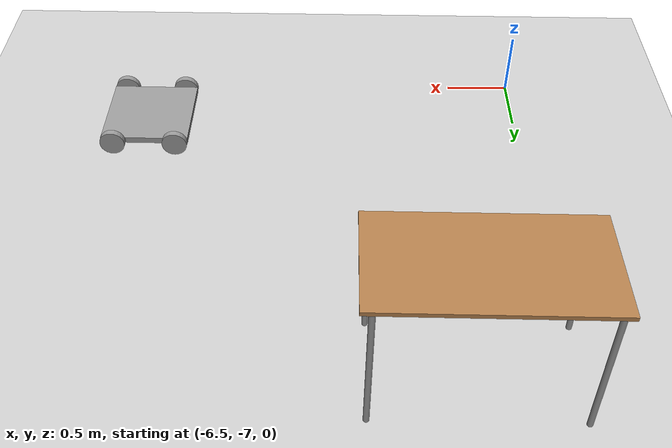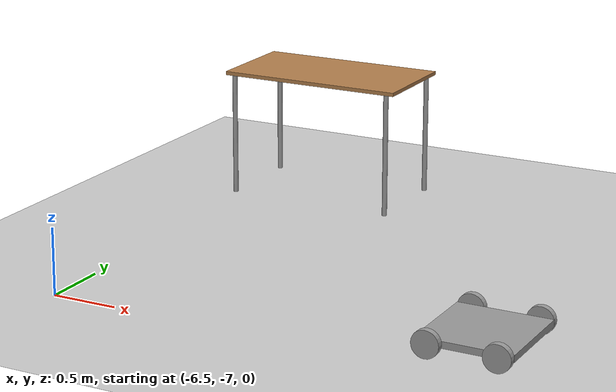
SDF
<sdf version="1.6">
 <world name="default">
  <model name="ground_plane">
   <static>1</static>
   <link name="link">
    <collision name="collision">
     <geometry><plane><normal>0 0 1</normal><size>100 100</size></plane></geometry>
     <surface>
      <contact><collide_bitmask>65535</collide_bitmask></contact>
      <friction><ode><mu>100</mu><mu2>50</mu2></ode></friction>
     </surface>
    </collision>
    <visual name="visual">
     <cast_shadows>0</cast_shadows>
     <geometry><plane><normal>0 0 1</normal><size>100 100</size></plane></geometry>
     <material>
      <script><uri>file://media/materials/scripts/gazebo.material</uri><name>Gazebo/Grey</name></script>
     </material>
    </visual>
   </link>
  </model>
  <model name="Robot_clone_0">
   <link name="link_2">
    <inertial>
     <mass>1</mass>
     <inertia>
      <ixx>0.166667</ixx>
      <ixy>0</ixy>
      <ixz>0</ixz>
      <iyy>0.166667</iyy>
      <iyz>0</iyz>
      <izz>0.166667</izz>
     </inertia>
    </inertial>
    <pose>0 0.5 0.3 0 -0 0</pose>
    <visual name="visual">
     <geometry><box><size>0.7 0.7 0.05</size></box></geometry>
     <material>
      <lighting>1</lighting>
      <script><uri>file://media/materials/scripts/gazebo.material</uri><name>Gazebo/Grey</name></script>
      <shader type="vertex"><normal_map>__default__</normal_map></shader>
      <ambient>0.3 0.3 0.3 1</ambient>
      <diffuse>0.7 0.7 0.7 1</diffuse>
      <specular>0.01 0.01 0.01 1</specular>
      <emissive>0 0 0 1</emissive>
     </material>
    </visual>
    <collision name="collision">
     <geometry><box><size>0.7 0.7 0.05</size></box></geometry>
     <surface>
      <friction>
       <ode><mu>1</mu><mu2>1</mu2><fdir1>0 0 0</fdir1><slip1>0</slip1><slip2>0</slip2></ode>
       <torsional>
        <coefficient>1</coefficient>
        <patch_radius>0</patch_radius>
        <surface_radius>0</surface_radius>
        <use_patch_radius>1</use_patch_radius>
        <ode><slip>0</slip></ode>
       </torsional>
      </friction>
      <bounce><restitution_coefficient>0</restitution_coefficient><threshold>1e+06</threshold></bounce>
      <contact>
       <collide_without_contact>0</collide_without_contact>
       <collide_without_contact_bitmask>1</collide_without_contact_bitmask>
       <collide_bitmask>1</collide_bitmask>
       <ode>
        <soft_cfm>0</soft_cfm>
        <soft_erp>0.2</soft_erp>
        <kp>1e+13</kp>
        <kd>1</kd>
        <max_vel>0.01</max_vel>
        <min_depth>0</min_depth>
       </ode>
       <bullet>
        <split_impulse>1</split_impulse>
        <split_impulse_penetration_threshold>-0.01</split_impulse_penetration_threshold>
        <soft_cfm>0</soft_cfm>
        <soft_erp>0.2</soft_erp>
        <kp>1e+13</kp>
        <kd>1</kd>
       </bullet>
      </contact>
     </surface>
    </collision>
   </link>
   <link name="link_0">
    <inertial>
     <mass>1</mass>
     <inertia><ixx>0.145833</ixx><ixy>0</ixy><ixz>0</ixz><iyy>0.145833</iyy><iyz>0</iyz><izz>0.125</izz></inertia>
    </inertial>
    <pose>-0.250189 0.875048 0.300006 8e-06 -0 0.000261</pose>
    <visual name="visual">
     <pose>0 0 0 1.571 -0 0</pose>
     <geometry><cylinder><radius>0.1</radius><length>0.05</length></cylinder></geometry>
     <material>
      <lighting>1</lighting>
      <script><uri>file://media/materials/scripts/gazebo.material</uri><name>Gazebo/Grey</name></script>
      <shader type="vertex"><normal_map>__default__</normal_map></shader>
      <ambient>0.3 0.3 0.3 1</ambient>
      <diffuse>0.7 0.7 0.7 1</diffuse>
      <specular>0.01 0.01 0.01 1</specular>
      <emissive>0 0 0 1</emissive>
     </material>
    </visual>
    <collision name="collision">
     <pose>0 0 0 1.571 -0 0</pose>
     <geometry><cylinder><radius>0.1</radius><length>0.05</length></cylinder></geometry>
     <surface>
      <friction>
       <ode><mu>1</mu><mu2>1</mu2><fdir1>0 0 0</fdir1><slip1>0</slip1><slip2>0</slip2></ode>
       <torsional>
        <coefficient>1</coefficient>
        <patch_radius>0</patch_radius>
        <surface_radius>0</surface_radius>
        <use_patch_radius>1</use_patch_radius>
        <ode><slip>0</slip></ode>
       </torsional>
      </friction>
      <bounce><restitution_coefficient>0</restitution_coefficient><threshold>1e+06</threshold></bounce>
      <contact>
       <collide_without_contact>0</collide_without_contact>
       <collide_without_contact_bitmask>1</collide_without_contact_bitmask>
       <collide_bitmask>1</collide_bitmask>
       <ode>
        <soft_cfm>0</soft_cfm>
        <soft_erp>0.2</soft_erp>
        <kp>1e+13</kp>
        <kd>1</kd>
        <max_vel>0.01</max_vel>
        <min_depth>0</min_depth>
       </ode>
       <bullet>
        <split_impulse>1</split_impulse>
        <split_impulse_penetration_threshold>-0.01</split_impulse_penetration_threshold>
        <soft_cfm>0</soft_cfm>
        <soft_erp>0.2</soft_erp>
        <kp>1e+13</kp>
        <kd>1</kd>
       </bullet>
      </contact>
     </surface>
    </collision>
   </link>
   <link name="link_0_clone">
    <inertial>
     <mass>1</mass>
     <inertia><ixx>0.145833</ixx><ixy>0</ixy><ixz>0</ixz><iyy>0.145833</iyy><iyz>0</iyz><izz>0.125</izz></inertia>
    </inertial>
    <pose>-0.249987 0.124796 0.3 1.6e-05 -0 0.000522</pose>
    <visual name="visual">
     <pose>0 0 0 1.571 -0 0</pose>
     <geometry><cylinder><radius>0.1</radius><length>0.05</length></cylinder></geometry>
     <material>
      <lighting>1</lighting>
      <script><uri>file://media/materials/scripts/gazebo.material</uri><name>Gazebo/Grey</name></script>
      <shader type="vertex"><normal_map>__default__</normal_map></shader>
      <ambient>0.3 0.3 0.3 1</ambient>
      <diffuse>0.7 0.7 0.7 1</diffuse>
      <specular>0.01 0.01 0.01 1</specular>
      <emissive>0 0 0 1</emissive>
     </material>
    </visual>
    <collision name="collision">
     <pose>0 0 0 1.571 -0 0</pose>
     <geometry><cylinder><radius>0.1</radius><length>0.05</length></cylinder></geometry>
     <surface>
      <friction>
       <ode><mu>1</mu><mu2>1</mu2><fdir1>0 0 0</fdir1><slip1>0</slip1><slip2>0</slip2></ode>
       <torsional>
        <coefficient>1</coefficient>
        <patch_radius>0</patch_radius>
        <surface_radius>0</surface_radius>
        <use_patch_radius>1</use_patch_radius>
        <ode><slip>0</slip></ode>
       </torsional>
      </friction>
      <bounce><restitution_coefficient>0</restitution_coefficient><threshold>1e+06</threshold></bounce>
      <contact>
       <collide_without_contact>0</collide_without_contact>
       <collide_without_contact_bitmask>1</collide_without_contact_bitmask>
       <collide_bitmask>1</collide_bitmask>
       <ode>
        <soft_cfm>0</soft_cfm>
        <soft_erp>0.2</soft_erp>
        <kp>1e+13</kp>
        <kd>1</kd>
        <max_vel>0.01</max_vel>
        <min_depth>0</min_depth>
       </ode>
       <bullet>
        <split_impulse>1</split_impulse>
        <split_impulse_penetration_threshold>-0.01</split_impulse_penetration_threshold>
        <soft_cfm>0</soft_cfm>
        <soft_erp>0.2</soft_erp>
        <kp>1e+13</kp>
        <kd>1</kd>
       </bullet>
      </contact>
     </surface>
    </collision>
   </link>
   <link name="link_0_clone_0">
    <inertial>
     <mass>1</mass>
     <inertia><ixx>0.145833</ixx><ixy>0</ixy><ixz>0</ixz><iyy>0.145833</iyy><iyz>0</iyz><izz>0.125</izz></inertia>
    </inertial>
    <pose>0.249987 0.875204 0.3 1.6e-05 -0 0.000522</pose>
    <visual name="visual">
     <pose>0 0 0 1.571 -0 0</pose>
     <geometry><cylinder><radius>0.1</radius><length>0.05</length></cylinder></geometry>
     <material>
      <lighting>1</lighting>
      <script><uri>file://media/materials/scripts/gazebo.material</uri><name>Gazebo/Grey</name></script>
      <shader type="vertex"><normal_map>__default__</normal_map></shader>
      <ambient>0.3 0.3 0.3 1</ambient>
      <diffuse>0.7 0.7 0.7 1</diffuse>
      <specular>0.01 0.01 0.01 1</specular>
      <emissive>0 0 0 1</emissive>
     </material>
    </visual>
    <collision name="collision">
     <pose>0 0 0 1.571 -0 0</pose>
     <geometry><cylinder><radius>0.1</radius><length>0.05</length></cylinder></geometry>
     <surface>
      <friction>
       <ode><mu>1</mu><mu2>1</mu2><fdir1>0 0 0</fdir1><slip1>0</slip1><slip2>0</slip2></ode>
       <torsional>
        <coefficient>1</coefficient>
        <patch_radius>0</patch_radius>
        <surface_radius>0</surface_radius>
        <use_patch_radius>1</use_patch_radius>
        <ode><slip>0</slip></ode>
       </torsional>
      </friction>
      <bounce><restitution_coefficient>0</restitution_coefficient><threshold>1e+06</threshold></bounce>
      <contact>
       <collide_without_contact>0</collide_without_contact>
       <collide_without_contact_bitmask>1</collide_without_contact_bitmask>
       <collide_bitmask>1</collide_bitmask>
       <ode>
        <soft_cfm>0</soft_cfm>
        <soft_erp>0.2</soft_erp>
        <kp>1e+13</kp>
        <kd>1</kd>
        <max_vel>0.01</max_vel>
        <min_depth>0</min_depth>
       </ode>
       <bullet>
        <split_impulse>1</split_impulse>
        <split_impulse_penetration_threshold>-0.01</split_impulse_penetration_threshold>
        <soft_cfm>0</soft_cfm>
        <soft_erp>0.2</soft_erp>
        <kp>1e+13</kp>
        <kd>1</kd>
       </bullet>
      </contact>
     </surface>
    </collision>
   </link>
   <link name="link_0_clone_0_clone">
    <inertial>
     <mass>1</mass>
     <inertia><ixx>0.145833</ixx><ixy>0</ixy><ixz>0</ixz><iyy>0.145833</iyy><iyz>0</iyz><izz>0.125</izz></inertia>
    </inertial>
    <pose>0.250176 0.124899 0.3 2.4e-05 -0 0.000783</pose>
    <visual name="visual">
     <pose>0 0 0 1.571 -0 0</pose>
     <geometry><cylinder><radius>0.1</radius><length>0.05</length></cylinder></geometry>
     <material>
      <lighting>1</lighting>
      <script><uri>file://media/materials/scripts/gazebo.material</uri><name>Gazebo/Grey</name></script>
      <shader type="vertex"><normal_map>__default__</normal_map></shader>
      <ambient>0.3 0.3 0.3 1</ambient>
      <diffuse>0.7 0.7 0.7 1</diffuse>
      <specular>0.01 0.01 0.01 1</specular>
      <emissive>0 0 0 1</emissive>
     </material>
    </visual>
    <collision name="collision">
     <pose>0 0 0 1.571 -0 0</pose>
     <geometry><cylinder><radius>0.1</radius><length>0.05</length></cylinder></geometry>
     <surface>
      <friction>
       <ode><mu>1</mu><mu2>1</mu2><fdir1>0 0 0</fdir1><slip1>0</slip1><slip2>0</slip2></ode>
       <torsional>
        <coefficient>1</coefficient>
        <patch_radius>0</patch_radius>
        <surface_radius>0</surface_radius>
        <use_patch_radius>1</use_patch_radius>
        <ode><slip>0</slip></ode>
       </torsional>
      </friction>
      <bounce><restitution_coefficient>0</restitution_coefficient><threshold>1e+06</threshold></bounce>
      <contact>
       <collide_without_contact>0</collide_without_contact>
       <collide_without_contact_bitmask>1</collide_without_contact_bitmask>
       <collide_bitmask>1</collide_bitmask>
       <ode>
        <soft_cfm>0</soft_cfm>
        <soft_erp>0.2</soft_erp>
        <kp>1e+13</kp>
        <kd>1</kd>
        <max_vel>0.01</max_vel>
        <min_depth>0</min_depth>
       </ode>
       <bullet>
        <split_impulse>1</split_impulse>
        <split_impulse_penetration_threshold>-0.01</split_impulse_penetration_threshold>
        <soft_cfm>0</soft_cfm>
        <soft_erp>0.2</soft_erp>
        <kp>1e+13</kp>
        <kd>1</kd>
       </bullet>
      </contact>
     </surface>
    </collision>
   </link>
   <joint name="link_2_JOINT_10" type="revolute">
    <parent>link_2</parent>
    <child>link_0_clone</child>
    <axis>
     <xyz>0 0 1</xyz>
     <use_parent_model_frame>0</use_parent_model_frame>
     <limit>
      <lower>-1.79769e+308</lower>
      <upper>1.79769e+308</upper>
      <effort>-1</effort>
      <velocity>-1</velocity>
     </limit>
     <dynamics>
      <spring_reference>0</spring_reference>
      <spring_stiffness>0</spring_stiffness>
      <damping>0</damping>
     </dynamics>
    </axis>
    <physics>
     <ode><limit><cfm>0</cfm><erp>0.2</erp></limit><suspension><cfm>0</cfm><erp>0.2</erp></suspension></ode>
    </physics>
   </joint>
   <joint name="link_2_JOINT_1" type="revolute">
    <parent>link_2</parent>
    <child>link_0</child>
    <axis>
     <xyz>0 0 1</xyz>
     <use_parent_model_frame>0</use_parent_model_frame>
     <limit>
      <lower>-1.79769e+308</lower>
      <upper>1.79769e+308</upper>
      <effort>-1</effort>
      <velocity>-1</velocity>
     </limit>
     <dynamics>
      <spring_reference>0</spring_reference>
      <spring_stiffness>0</spring_stiffness>
      <damping>0</damping>
      <friction>0</friction>
     </dynamics>
    </axis>
    <physics>
     <ode><limit><cfm>0</cfm><erp>0.2</erp></limit><suspension><cfm>0</cfm><erp>0.2</erp></suspension></ode>
    </physics>
   </joint>
   <joint name="link_2_JOINT_8" type="revolute">
    <parent>link_2</parent>
    <child>link_0_clone_0</child>
    <axis>
     <xyz>0 0 1</xyz>
     <use_parent_model_frame>0</use_parent_model_frame>
     <limit>
      <lower>-1.79769e+308</lower>
      <upper>1.79769e+308</upper>
      <effort>-1</effort>
      <velocity>-1</velocity>
     </limit>
     <dynamics>
      <spring_reference>0</spring_reference>
      <spring_stiffness>0</spring_stiffness>
      <damping>0</damping>
     </dynamics>
    </axis>
    <physics>
     <ode><limit><cfm>0</cfm><erp>0.2</erp></limit><suspension><cfm>0</cfm><erp>0.2</erp></suspension></ode>
    </physics>
   </joint>
   <joint name="link_2_JOINT_9" type="revolute">
    <parent>link_2</parent>
    <child>link_0_clone_0_clone</child>
    <axis>
     <xyz>0 0 1</xyz>
     <use_parent_model_frame>0</use_parent_model_frame>
     <limit>
      <lower>-1.79769e+308</lower>
      <upper>1.79769e+308</upper>
      <effort>-1</effort>
      <velocity>-1</velocity>
     </limit>
     <dynamics>
      <spring_reference>0</spring_reference>
      <spring_stiffness>0</spring_stiffness>
      <damping>0</damping>
     </dynamics>
    </axis>
    <physics>
     <ode><limit><cfm>0</cfm><erp>0.2</erp></limit><suspension><cfm>0</cfm><erp>0.2</erp></suspension></ode>
    </physics>
   </joint>
   <static>0</static>
   <pose>-3.4822 -6.92686 -0.199993 -4e-06 -7e-06 -0.003515</pose>
  </model>
  <model name="table">
   <static>1</static>
   <link name="link">
    <collision name="surface">
     <pose>0 0 1 0 -0 0</pose>
     <geometry><box><size>1.5 0.8 0.03</size></box></geometry>
     <surface><friction><ode><mu>0.6</mu><mu2>0.6</mu2></ode></friction></surface>
    </collision>
    <visual name="visual1">
     <pose>0 0 1 0 -0 0</pose>
     <geometry><box><size>1.5 0.8 0.03</size></box></geometry>
     <material>
      <script><uri>file://media/materials/scripts/gazebo.material</uri><name>Gazebo/Wood</name></script>
     </material>
    </visual>
    <collision name="front_left_leg">
     <pose>0.68 0.38 0.5 0 -0 0</pose>
     <geometry><cylinder><radius>0.02</radius><length>1</length></cylinder></geometry>
    </collision>
    <visual name="front_left_leg">
     <pose>0.68 0.38 0.5 0 -0 0</pose>
     <geometry><cylinder><radius>0.02</radius><length>1</length></cylinder></geometry>
     <material>
      <script><uri>file://media/materials/scripts/gazebo.material</uri><name>Gazebo/Grey</name></script>
     </material>
    </visual>
    <collision name="front_right_leg">
     <pose>0.68 -0.38 0.5 0 -0 0</pose>
     <geometry><cylinder><radius>0.02</radius><length>1</length></cylinder></geometry>
    </collision>
    <visual name="front_right_leg">
     <pose>0.68 -0.38 0.5 0 -0 0</pose>
     <geometry><cylinder><radius>0.02</radius><length>1</length></cylinder></geometry>
     <material>
      <script><uri>file://media/materials/scripts/gazebo.material</uri><name>Gazebo/Grey</name></script>
     </material>
    </visual>
    <collision name="back_right_leg">
     <pose>-0.68 -0.38 0.5 0 -0 0</pose>
     <geometry><cylinder><radius>0.02</radius><length>1</length></cylinder></geometry>
    </collision>
    <visual name="back_right_leg">
     <pose>-0.68 -0.38 0.5 0 -0 0</pose>
     <geometry><cylinder><radius>0.02</radius><length>1</length></cylinder></geometry>
     <material>
      <script><uri>file://media/materials/scripts/gazebo.material</uri><name>Gazebo/Grey</name></script>
     </material>
    </visual>
    <collision name="back_left_leg">
     <pose>-0.68 0.38 0.5 0 -0 0</pose>
     <geometry><cylinder><radius>0.02</radius><length>1</length></cylinder></geometry>
    </collision>
    <visual name="back_left_leg">
     <pose>-0.68 0.38 0.5 0 -0 0</pose>
     <geometry><cylinder><radius>0.02</radius><length>1</length></cylinder></geometry>
     <material>
      <script><uri>file://media/materials/scripts/gazebo.material</uri><name>Gazebo/Grey</name></script>
     </material>
    </visual>
   </link>
   <pose>-5.91544 -3.91082 0 0 -0 0</pose>
  </model>
 </world>
</sdf>
